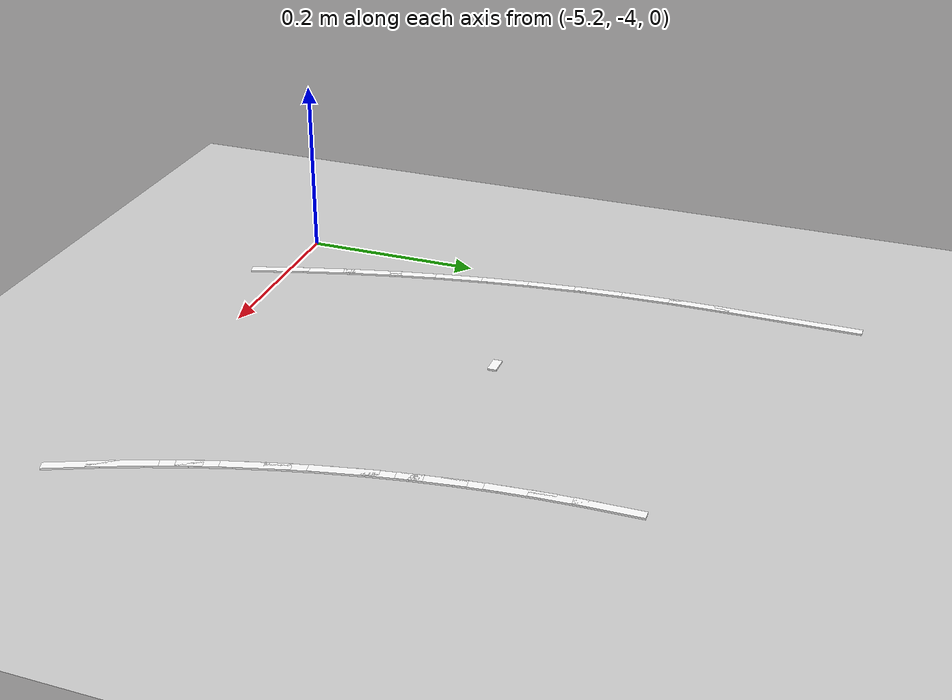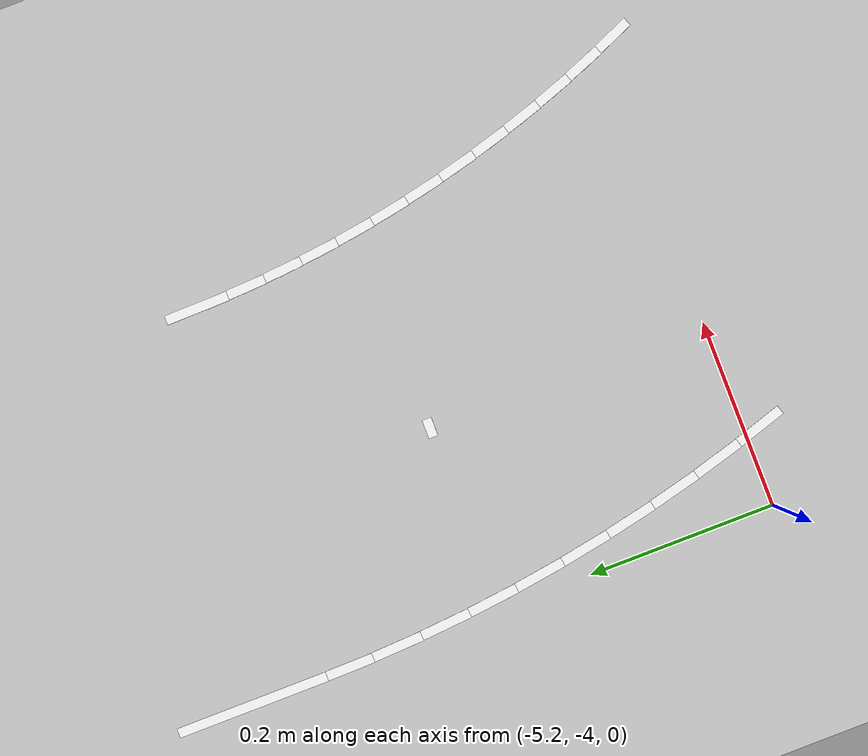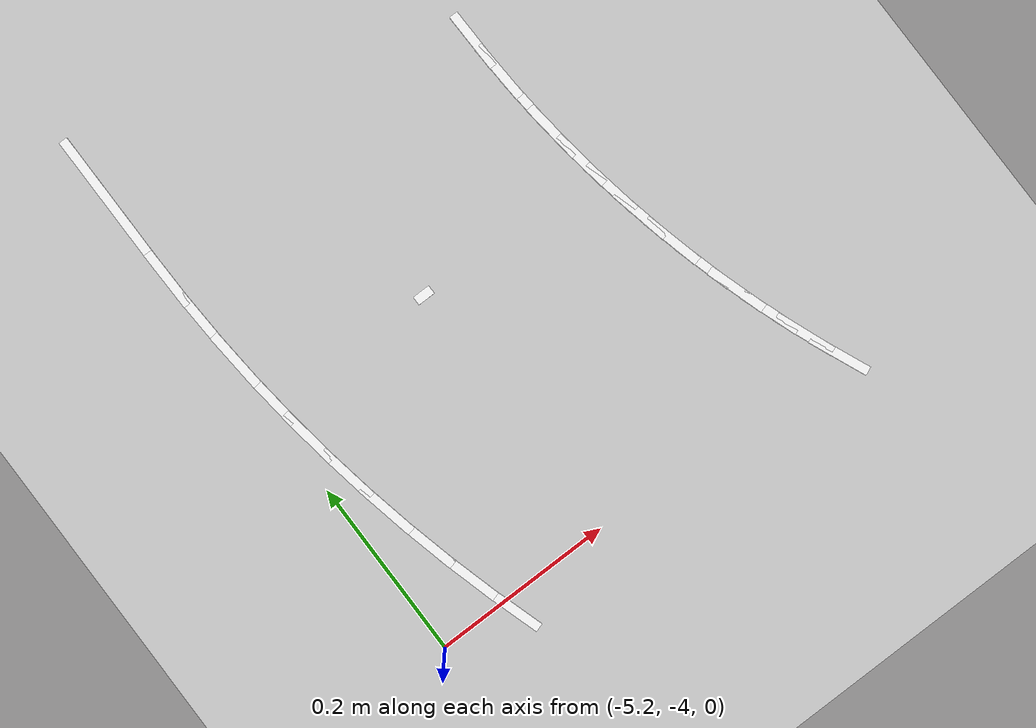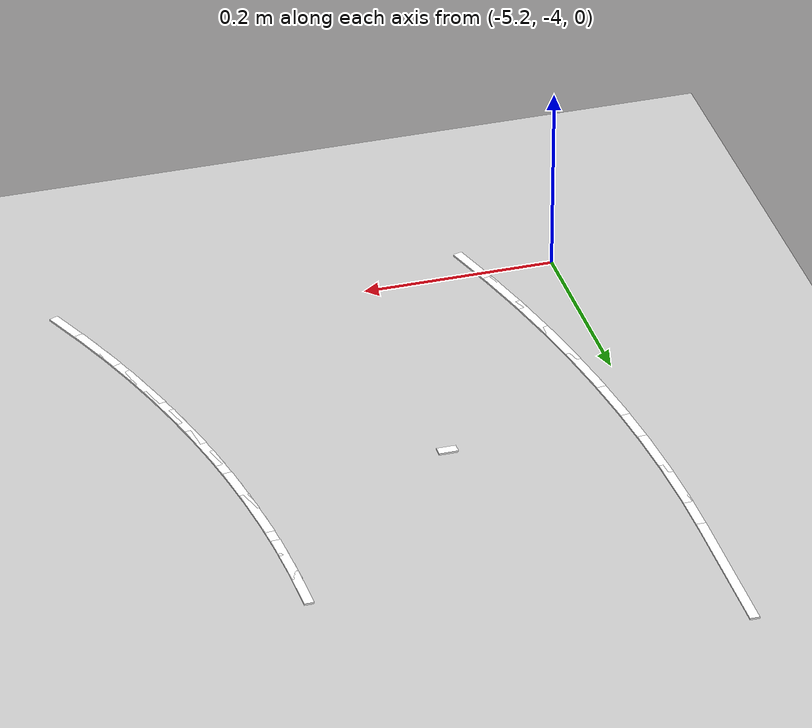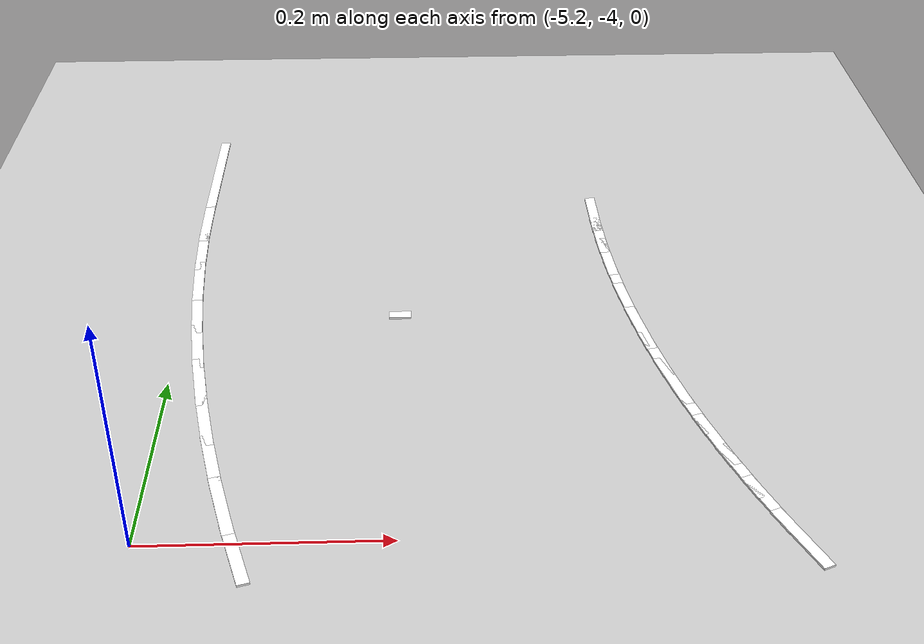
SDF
<sdf version="1.7">
 <world name="default">
  <model name="ground_plane">
   <static>1</static>
   <link name="link">
    <collision name="collision">
     <geometry><plane><normal>0 0 1</normal><size>100 100</size></plane></geometry>
     <surface>
      <contact><collide_bitmask>65535</collide_bitmask></contact>
      <friction><ode><mu>100</mu><mu2>50</mu2></ode></friction>
     </surface>
    </collision>
    <visual name="visual">
     <cast_shadows>0</cast_shadows>
     <geometry><plane><normal>0 0 1</normal><size>100 100</size></plane></geometry>
     <material>
      <script><uri>file://media/materials/scripts/gazebo.material</uri><name>Gazebo/Grey</name></script>
     </material>
    </visual>
   </link>
  </model>
  <model name="lane_line_right_348">
   <static>1</static>
   <link name="link">
    <pose>0 0 -0.004 0 -0 0</pose>
    <visual name="visual">
     <geometry><box><size>0.1629 0.01 0.01</size></box></geometry>
     <material><ambient>1 1 1 1</ambient><diffuse>1 1 1 1</diffuse></material>
    </visual>
    <collision name="collision"><geometry><box><size>0.1629 0.01 0.01</size></box></geometry></collision>
   </link>
   <pose>-5.2 -3.42857 0 0 0 -1.5708</pose>
  </model>
  <model name="lane_line_right_349">
   <static>1</static>
   <link name="link">
    <pose>0 0 -0.004 0 -0 0</pose>
    <visual name="visual">
     <geometry><box><size>0.02 0.01 0.01</size></box></geometry>
     <material><ambient>1 1 1 1</ambient><diffuse>1 1 1 1</diffuse></material>
    </visual>
    <collision name="collision"><geometry><box><size>0.02 0.01 0.01</size></box></geometry></collision>
   </link>
   <pose>-5 -3.7 0 0 -0 0</pose>
  </model>
  <model name="lane_line_left_350">
   <static>1</static>
   <link name="link">
    <pose>0 0 -0.004 0 -0 0</pose>
    <visual name="visual">
     <geometry><box><size>0.0681 0.01 0.01</size></box></geometry>
     <material><ambient>1 1 1 1</ambient><diffuse>1 1 1 1</diffuse></material>
    </visual>
    <collision name="collision"><geometry><box><size>0.0681 0.01 0.01</size></box></geometry></collision>
   </link>
   <pose>-4.79964 -3.52083 0 0 0 -1.55477</pose>
  </model>
  <model name="lane_line_right_350">
   <static>1</static>
   <link name="link">
    <pose>0 0 -0.004 0 -0 0</pose>
    <visual name="visual">
     <geometry><box><size>0.0681 0.01 0.01</size></box></geometry>
     <material><ambient>1 1 1 1</ambient><diffuse>1 1 1 1</diffuse></material>
    </visual>
    <collision name="collision"><geometry><box><size>0.0681 0.01 0.01</size></box></geometry></collision>
   </link>
   <pose>-5.19959 -3.52724 0 0 0 -1.55477</pose>
  </model>
  <model name="lane_line_left_351">
   <static>1</static>
   <link name="link">
    <pose>0 0 -0.004 0 -0 0</pose>
    <visual name="visual">
     <geometry><box><size>0.0681 0.01 0.01</size></box></geometry>
     <material><ambient>1 1 1 1</ambient><diffuse>1 1 1 1</diffuse></material>
    </visual>
    <collision name="collision"><geometry><box><size>0.0681 0.01 0.01</size></box></geometry></collision>
   </link>
   <pose>-4.7983 -3.56248 0 0 0 -1.52271</pose>
  </model>
  <model name="lane_line_right_351">
   <static>1</static>
   <link name="link">
    <pose>0 0 -0.004 0 -0 0</pose>
    <visual name="visual">
     <geometry><box><size>0.0681 0.01 0.01</size></box></geometry>
     <material><ambient>1 1 1 1</ambient><diffuse>1 1 1 1</diffuse></material>
    </visual>
    <collision name="collision"><geometry><box><size>0.0681 0.01 0.01</size></box></geometry></collision>
   </link>
   <pose>-5.19784 -3.5817 0 0 0 -1.52271</pose>
  </model>
  <model name="lane_line_left_352">
   <static>1</static>
   <link name="link">
    <pose>0 0 -0.004 0 -0 0</pose>
    <visual name="visual">
     <geometry><box><size>0.0681 0.01 0.01</size></box></geometry>
     <material><ambient>1 1 1 1</ambient><diffuse>1 1 1 1</diffuse></material>
    </visual>
    <collision name="collision"><geometry><box><size>0.0681 0.01 0.01</size></box></geometry></collision>
   </link>
   <pose>-4.79564 -3.60406 0 0 0 -1.49065</pose>
  </model>
  <model name="lane_line_right_352">
   <static>1</static>
   <link name="link">
    <pose>0 0 -0.004 0 -0 0</pose>
    <visual name="visual">
     <geometry><box><size>0.0681 0.01 0.01</size></box></geometry>
     <material><ambient>1 1 1 1</ambient><diffuse>1 1 1 1</diffuse></material>
    </visual>
    <collision name="collision"><geometry><box><size>0.0681 0.01 0.01</size></box></geometry></collision>
   </link>
   <pose>-5.19435 -3.63608 0 0 0 -1.49065</pose>
  </model>
  <model name="lane_line_left_353">
   <static>1</static>
   <link name="link">
    <pose>0 0 -0.004 0 -0 0</pose>
    <visual name="visual">
     <geometry><box><size>0.0681 0.01 0.01</size></box></geometry>
     <material><ambient>1 1 1 1</ambient><diffuse>1 1 1 1</diffuse></material>
    </visual>
    <collision name="collision"><geometry><box><size>0.0681 0.01 0.01</size></box></geometry></collision>
   </link>
   <pose>-4.79163 -3.64553 0 0 0 -1.4586</pose>
  </model>
  <model name="lane_line_right_353">
   <static>1</static>
   <link name="link">
    <pose>0 0 -0.004 0 -0 0</pose>
    <visual name="visual">
     <geometry><box><size>0.0681 0.01 0.01</size></box></geometry>
     <material><ambient>1 1 1 1</ambient><diffuse>1 1 1 1</diffuse></material>
    </visual>
    <collision name="collision"><geometry><box><size>0.0681 0.01 0.01</size></box></geometry></collision>
   </link>
   <pose>-5.18912 -3.69032 0 0 0 -1.4586</pose>
  </model>
  <model name="lane_line_left_354">
   <static>1</static>
   <link name="link">
    <pose>0 0 -0.004 0 -0 0</pose>
    <visual name="visual">
     <geometry><box><size>0.0681 0.01 0.01</size></box></geometry>
     <material><ambient>1 1 1 1</ambient><diffuse>1 1 1 1</diffuse></material>
    </visual>
    <collision name="collision"><geometry><box><size>0.0681 0.01 0.01</size></box></geometry></collision>
   </link>
   <pose>-4.78631 -3.68686 0 0 0 -1.42654</pose>
  </model>
  <model name="lane_line_right_354">
   <static>1</static>
   <link name="link">
    <pose>0 0 -0.004 0 -0 0</pose>
    <visual name="visual">
     <geometry><box><size>0.0681 0.01 0.01</size></box></geometry>
     <material><ambient>1 1 1 1</ambient><diffuse>1 1 1 1</diffuse></material>
    </visual>
    <collision name="collision"><geometry><box><size>0.0681 0.01 0.01</size></box></geometry></collision>
   </link>
   <pose>-5.18215 -3.74436 0 0 0 -1.42654</pose>
  </model>
  <model name="lane_line_left_355">
   <static>1</static>
   <link name="link">
    <pose>0 0 -0.004 0 -0 0</pose>
    <visual name="visual">
     <geometry><box><size>0.0681 0.01 0.01</size></box></geometry>
     <material><ambient>1 1 1 1</ambient><diffuse>1 1 1 1</diffuse></material>
    </visual>
    <collision name="collision"><geometry><box><size>0.0681 0.01 0.01</size></box></geometry></collision>
   </link>
   <pose>-4.77966 -3.72799 0 0 0 -1.39448</pose>
  </model>
  <model name="lane_line_right_355">
   <static>1</static>
   <link name="link">
    <pose>0 0 -0.004 0 -0 0</pose>
    <visual name="visual">
     <geometry><box><size>0.0681 0.01 0.01</size></box></geometry>
     <material><ambient>1 1 1 1</ambient><diffuse>1 1 1 1</diffuse></material>
    </visual>
    <collision name="collision"><geometry><box><size>0.0681 0.01 0.01</size></box></geometry></collision>
   </link>
   <pose>-5.17346 -3.79815 0 0 0 -1.39448</pose>
  </model>
  <model name="lane_line_left_356">
   <static>1</static>
   <link name="link">
    <pose>0 0 -0.004 0 -0 0</pose>
    <visual name="visual">
     <geometry><box><size>0.0681 0.01 0.01</size></box></geometry>
     <material><ambient>1 1 1 1</ambient><diffuse>1 1 1 1</diffuse></material>
    </visual>
    <collision name="collision"><geometry><box><size>0.0681 0.01 0.01</size></box></geometry></collision>
   </link>
   <pose>-4.77169 -3.76889 0 0 0 -1.36243</pose>
  </model>
  <model name="lane_line_right_356">
   <static>1</static>
   <link name="link">
    <pose>0 0 -0.004 0 -0 0</pose>
    <visual name="visual">
     <geometry><box><size>0.0681 0.01 0.01</size></box></geometry>
     <material><ambient>1 1 1 1</ambient><diffuse>1 1 1 1</diffuse></material>
    </visual>
    <collision name="collision"><geometry><box><size>0.0681 0.01 0.01</size></box></geometry></collision>
   </link>
   <pose>-5.16304 -3.85163 0 0 0 -1.36243</pose>
  </model>
  <model name="lane_line_left_357">
   <static>1</static>
   <link name="link">
    <pose>0 0 -0.004 0 -0 0</pose>
    <visual name="visual">
     <geometry><box><size>0.0681 0.01 0.01</size></box></geometry>
     <material><ambient>1 1 1 1</ambient><diffuse>1 1 1 1</diffuse></material>
    </visual>
    <collision name="collision"><geometry><box><size>0.0681 0.01 0.01</size></box></geometry></collision>
   </link>
   <pose>-4.76242 -3.80951 0 0 0 -1.33037</pose>
  </model>
  <model name="lane_line_right_357">
   <static>1</static>
   <link name="link">
    <pose>0 0 -0.004 0 -0 0</pose>
    <visual name="visual">
     <geometry><box><size>0.0681 0.01 0.01</size></box></geometry>
     <material><ambient>1 1 1 1</ambient><diffuse>1 1 1 1</diffuse></material>
    </visual>
    <collision name="collision"><geometry><box><size>0.0681 0.01 0.01</size></box></geometry></collision>
   </link>
   <pose>-5.15091 -3.90476 0 0 0 -1.33037</pose>
  </model>
  <model name="lane_line_left_358">
   <static>1</static>
   <link name="link">
    <pose>0 0 -0.004 0 -0 0</pose>
    <visual name="visual">
     <geometry><box><size>0.0681 0.01 0.01</size></box></geometry>
     <material><ambient>1 1 1 1</ambient><diffuse>1 1 1 1</diffuse></material>
    </visual>
    <collision name="collision"><geometry><box><size>0.0681 0.01 0.01</size></box></geometry></collision>
   </link>
   <pose>-4.75185 -3.84981 0 0 0 -1.29831</pose>
  </model>
  <model name="lane_line_right_358">
   <static>1</static>
   <link name="link">
    <pose>0 0 -0.004 0 -0 0</pose>
    <visual name="visual">
     <geometry><box><size>0.0681 0.01 0.01</size></box></geometry>
     <material><ambient>1 1 1 1</ambient><diffuse>1 1 1 1</diffuse></material>
    </visual>
    <collision name="collision"><geometry><box><size>0.0681 0.01 0.01</size></box></geometry></collision>
   </link>
   <pose>-5.13709 -3.95746 0 0 0 -1.29831</pose>
  </model>
  <model name="lane_line_left_359">
   <static>1</static>
   <link name="link">
    <pose>0 0 -0.004 0 -0 0</pose>
    <visual name="visual">
     <geometry><box><size>0.0681 0.01 0.01</size></box></geometry>
     <material><ambient>1 1 1 1</ambient><diffuse>1 1 1 1</diffuse></material>
    </visual>
    <collision name="collision"><geometry><box><size>0.0681 0.01 0.01</size></box></geometry></collision>
   </link>
   <pose>-4.74 -3.88976 0 0 0 -1.26625</pose>
  </model>
  <model name="lane_line_right_359">
   <static>1</static>
   <link name="link">
    <pose>0 0 -0.004 0 -0 0</pose>
    <visual name="visual">
     <geometry><box><size>0.0681 0.01 0.01</size></box></geometry>
     <material><ambient>1 1 1 1</ambient><diffuse>1 1 1 1</diffuse></material>
    </visual>
    <collision name="collision"><geometry><box><size>0.0681 0.01 0.01</size></box></geometry></collision>
   </link>
   <pose>-5.12159 -4.0097 0 0 0 -1.26625</pose>
  </model>
  <model name="lane_line_left_360">
   <static>1</static>
   <link name="link">
    <pose>0 0 -0.004 0 -0 0</pose>
    <visual name="visual">
     <geometry><box><size>0.0681 0.01 0.01</size></box></geometry>
     <material><ambient>1 1 1 1</ambient><diffuse>1 1 1 1</diffuse></material>
    </visual>
    <collision name="collision"><geometry><box><size>0.0681 0.01 0.01</size></box></geometry></collision>
   </link>
   <pose>-4.72687 -3.9293 0 0 0 -1.2342</pose>
  </model>
  <model name="lane_line_left_361">
   <static>1</static>
   <link name="link">
    <pose>0 0 -0.004 0 -0 0</pose>
    <visual name="visual">
     <geometry><box><size>0.0681 0.01 0.01</size></box></geometry>
     <material><ambient>1 1 1 1</ambient><diffuse>1 1 1 1</diffuse></material>
    </visual>
    <collision name="collision"><geometry><box><size>0.0681 0.01 0.01</size></box></geometry></collision>
   </link>
   <pose>-4.71248 -3.9684 0 0 0 -1.20214</pose>
  </model>
  <model name="lane_line_left_362">
   <static>1</static>
   <link name="link">
    <pose>0 0 -0.004 0 -0 0</pose>
    <visual name="visual">
     <geometry><box><size>0.0681 0.01 0.01</size></box></geometry>
     <material><ambient>1 1 1 1</ambient><diffuse>1 1 1 1</diffuse></material>
    </visual>
    <collision name="collision"><geometry><box><size>0.0681 0.01 0.01</size></box></geometry></collision>
   </link>
   <pose>-4.69684 -4.00702 0 0 0 -1.17008</pose>
  </model>
 </world>
</sdf>
